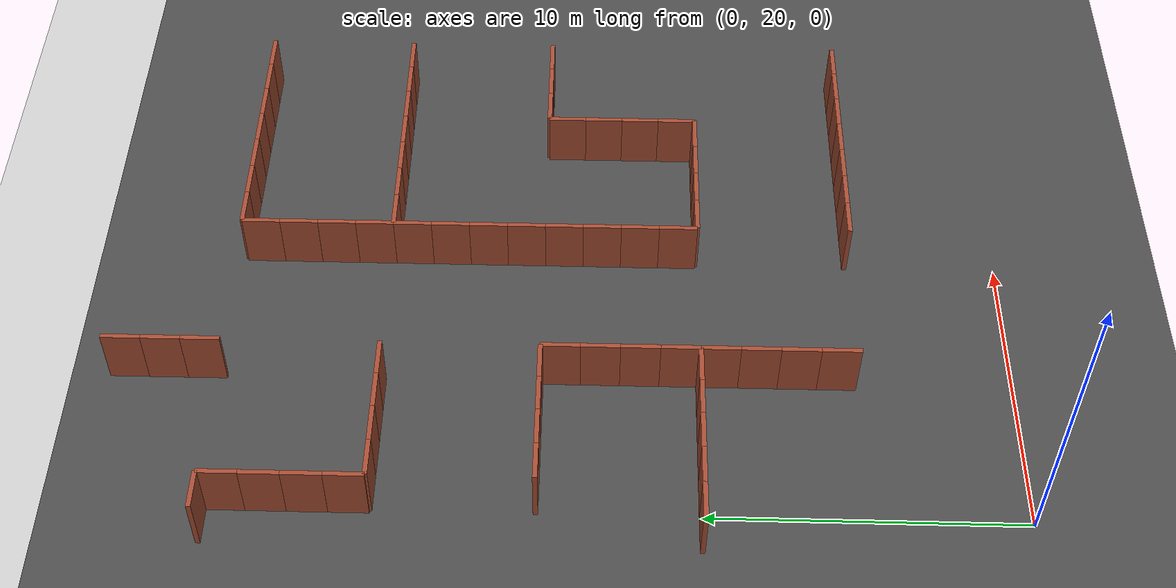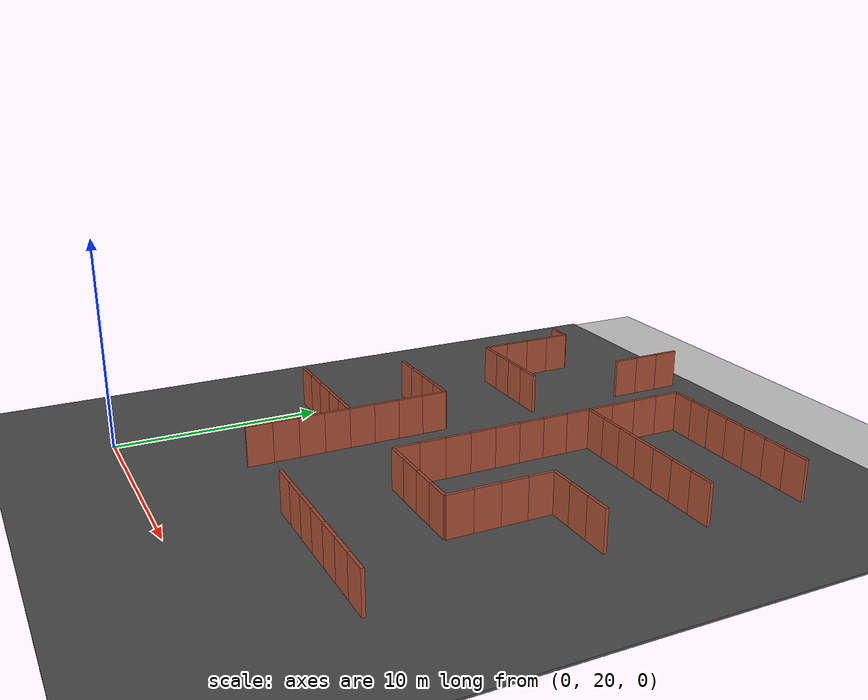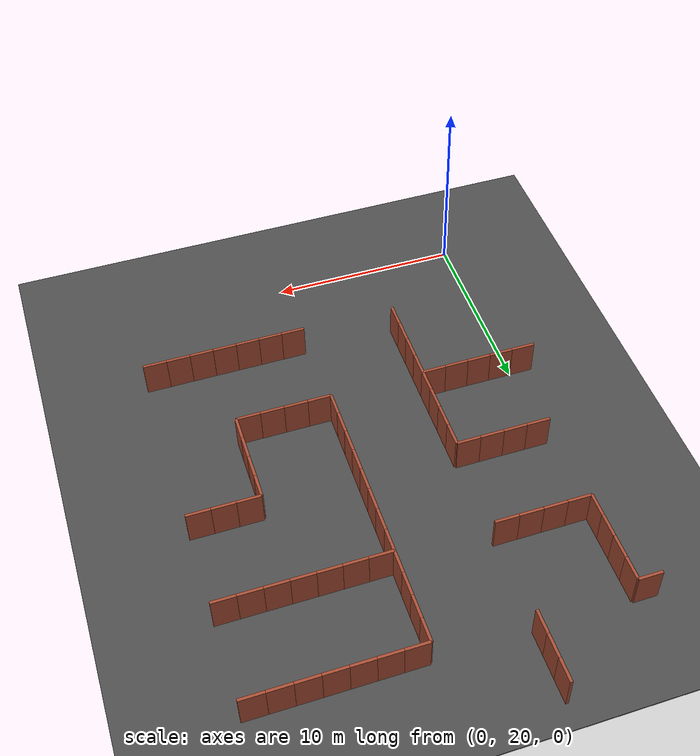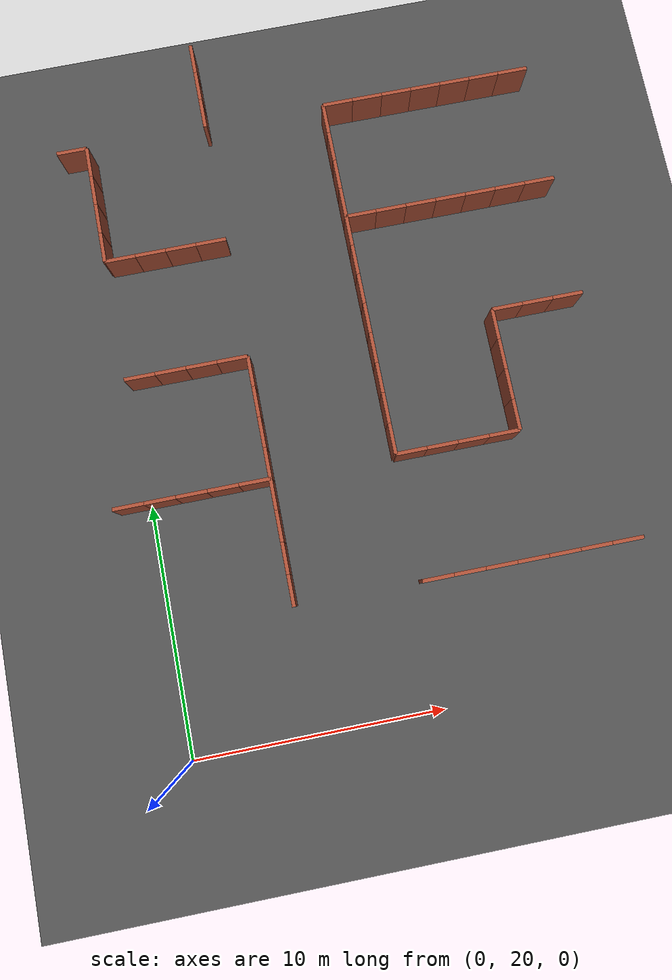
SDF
<sdf version="1.6">
 <world name="default">
  <model name="ground_plane">
   <static>1</static>
   <link name="link">
    <collision name="collision">
     <geometry><plane><normal>0 0 1</normal><size>100 100</size></plane></geometry>
     <surface><friction><ode><mu>100</mu><mu2>50</mu2></ode></friction></surface>
    </collision>
    <visual name="visual">
     <cast_shadows>0</cast_shadows>
     <geometry><plane><normal>0 0 1</normal><size>100 100</size></plane></geometry>
     <material>
      <script><uri>file://media/materials/scripts/gazebo.material</uri><name>Gazebo/Grey</name></script>
     </material>
    </visual>
   </link>
  </model>
  <model name="asphalt_plane">
   <static>1</static>
   <link name="link">
    <collision name="collision"><geometry><box><size>100 100 0.1</size></box></geometry></collision>
    <visual name="visual">
     <cast_shadows>0</cast_shadows>
     <geometry><box><size>100 100 0.1</size></box></geometry>
     <material>
      <script>
       <uri>model://asphalt_plane/materials/scripts</uri>
       <uri>model://asphalt_plane/materials/textures</uri>
       <name>vrc/asphalt</name>
      </script>
     </material>
    </visual>
   </link>
  </model>
  <model name="brick_wall_20_32_vertical1">
   <pose>0.625 30 0 0 -0 0</pose>
   <link name="Wall_0">
    <collision name="Wall_0_Collision">
     <geometry><box><size>1.25 0.15 2</size></box></geometry>
     <pose>0 0 1 0 -0 0</pose>
    </collision>
    <visual name="Wall_0_Visual">
     <pose>0 0 1 0 -0 0</pose>
     <geometry><box><size>1.25 0.15 2</size></box></geometry>
     <material>
      <script><uri>file://media/materials/scripts/gazebo.material</uri><name>Gazebo/Bricks</name></script>
      <ambient>1 1 1 1</ambient>
     </material>
     <meta><layer>0</layer></meta>
    </visual>
   </link>
   <static>1</static>
  </model>
  <model name="brick_wall_20_32_vertical2">
   <pose>-0.625 30 0 0 -0 0</pose>
   <link name="Wall_0">
    <collision name="Wall_0_Collision">
     <geometry><box><size>1.25 0.15 2</size></box></geometry>
     <pose>0 0 1 0 -0 0</pose>
    </collision>
    <visual name="Wall_0_Visual">
     <pose>0 0 1 0 -0 0</pose>
     <geometry><box><size>1.25 0.15 2</size></box></geometry>
     <material>
      <script><uri>file://media/materials/scripts/gazebo.material</uri><name>Gazebo/Bricks</name></script>
      <ambient>1 1 1 1</ambient>
     </material>
     <meta><layer>0</layer></meta>
    </visual>
   </link>
   <static>1</static>
  </model>
  <model name="brick_wall_20_34_vertical1">
   <pose>0.625 35 0 0 -0 0</pose>
   <link name="Wall_0">
    <collision name="Wall_0_Collision">
     <geometry><box><size>1.25 0.15 2</size></box></geometry>
     <pose>0 0 1 0 -0 0</pose>
    </collision>
    <visual name="Wall_0_Visual">
     <pose>0 0 1 0 -0 0</pose>
     <geometry><box><size>1.25 0.15 2</size></box></geometry>
     <material>
      <script><uri>file://media/materials/scripts/gazebo.material</uri><name>Gazebo/Bricks</name></script>
      <ambient>1 1 1 1</ambient>
     </material>
     <meta><layer>0</layer></meta>
    </visual>
   </link>
   <static>1</static>
  </model>
  <model name="brick_wall_20_36_vertical1">
   <pose>0.625 40 0 0 -0 0</pose>
   <link name="Wall_0">
    <collision name="Wall_0_Collision">
     <geometry><box><size>1.25 0.15 2</size></box></geometry>
     <pose>0 0 1 0 -0 0</pose>
    </collision>
    <visual name="Wall_0_Visual">
     <pose>0 0 1 0 -0 0</pose>
     <geometry><box><size>1.25 0.15 2</size></box></geometry>
     <material>
      <script><uri>file://media/materials/scripts/gazebo.material</uri><name>Gazebo/Bricks</name></script>
      <ambient>1 1 1 1</ambient>
     </material>
     <meta><layer>0</layer></meta>
    </visual>
   </link>
   <static>1</static>
  </model>
  <model name="brick_wall_20_36_horizontal1">
   <pose>0 40.625 0 0 -0 1.5708</pose>
   <link name="Wall_0">
    <collision name="Wall_0_Collision">
     <geometry><box><size>1.25 0.15 2</size></box></geometry>
     <pose>0 0 1 0 -0 0</pose>
    </collision>
    <visual name="Wall_0_Visual">
     <pose>0 0 1 0 -0 0</pose>
     <geometry><box><size>1.25 0.15 2</size></box></geometry>
     <material>
      <script><uri>file://media/materials/scripts/gazebo.material</uri><name>Gazebo/Bricks</name></script>
      <ambient>1 1 1 1</ambient>
     </material>
     <meta><layer>0</layer></meta>
    </visual>
   </link>
   <static>1</static>
  </model>
  <model name="brick_wall_20_37_horizontal1">
   <pose>0 43.125 0 0 -0 1.5708</pose>
   <link name="Wall_0">
    <collision name="Wall_0_Collision">
     <geometry><box><size>1.25 0.15 2</size></box></geometry>
     <pose>0 0 1 0 -0 0</pose>
    </collision>
    <visual name="Wall_0_Visual">
     <pose>0 0 1 0 -0 0</pose>
     <geometry><box><size>1.25 0.15 2</size></box></geometry>
     <material>
      <script><uri>file://media/materials/scripts/gazebo.material</uri><name>Gazebo/Bricks</name></script>
      <ambient>1 1 1 1</ambient>
     </material>
     <meta><layer>0</layer></meta>
    </visual>
   </link>
   <static>1</static>
  </model>
  <model name="brick_wall_20_37_horizontal2">
   <pose>0 41.875 0 0 -0 1.5708</pose>
   <link name="Wall_0">
    <collision name="Wall_0_Collision">
     <geometry><box><size>1.25 0.15 2</size></box></geometry>
     <pose>0 0 1 0 -0 0</pose>
    </collision>
    <visual name="Wall_0_Visual">
     <pose>0 0 1 0 -0 0</pose>
     <geometry><box><size>1.25 0.15 2</size></box></geometry>
     <material>
      <script><uri>file://media/materials/scripts/gazebo.material</uri><name>Gazebo/Bricks</name></script>
      <ambient>1 1 1 1</ambient>
     </material>
     <meta><layer>0</layer></meta>
    </visual>
   </link>
   <static>1</static>
  </model>
  <model name="brick_wall_20_38_vertical2">
   <pose>-0.625 45 0 0 -0 0</pose>
   <link name="Wall_0">
    <collision name="Wall_0_Collision">
     <geometry><box><size>1.25 0.15 2</size></box></geometry>
     <pose>0 0 1 0 -0 0</pose>
    </collision>
    <visual name="Wall_0_Visual">
     <pose>0 0 1 0 -0 0</pose>
     <geometry><box><size>1.25 0.15 2</size></box></geometry>
     <material>
      <script><uri>file://media/materials/scripts/gazebo.material</uri><name>Gazebo/Bricks</name></script>
      <ambient>1 1 1 1</ambient>
     </material>
     <meta><layer>0</layer></meta>
    </visual>
   </link>
   <static>1</static>
  </model>
  <model name="brick_wall_20_38_horizontal2">
   <pose>0 44.375 0 0 -0 1.5708</pose>
   <link name="Wall_0">
    <collision name="Wall_0_Collision">
     <geometry><box><size>1.25 0.15 2</size></box></geometry>
     <pose>0 0 1 0 -0 0</pose>
    </collision>
    <visual name="Wall_0_Visual">
     <pose>0 0 1 0 -0 0</pose>
     <geometry><box><size>1.25 0.15 2</size></box></geometry>
     <material>
      <script><uri>file://media/materials/scripts/gazebo.material</uri><name>Gazebo/Bricks</name></script>
      <ambient>1 1 1 1</ambient>
     </material>
     <meta><layer>0</layer></meta>
    </visual>
   </link>
   <static>1</static>
  </model>
  <model name="brick_wall_21_32_vertical1">
   <pose>3.125 30 0 0 -0 0</pose>
   <link name="Wall_0">
    <collision name="Wall_0_Collision">
     <geometry><box><size>1.25 0.15 2</size></box></geometry>
     <pose>0 0 1 0 -0 0</pose>
    </collision>
    <visual name="Wall_0_Visual">
     <pose>0 0 1 0 -0 0</pose>
     <geometry><box><size>1.25 0.15 2</size></box></geometry>
     <material>
      <script><uri>file://media/materials/scripts/gazebo.material</uri><name>Gazebo/Bricks</name></script>
      <ambient>1 1 1 1</ambient>
     </material>
     <meta><layer>0</layer></meta>
    </visual>
   </link>
   <static>1</static>
  </model>
  <model name="brick_wall_21_32_vertical2">
   <pose>1.875 30 0 0 -0 0</pose>
   <link name="Wall_0">
    <collision name="Wall_0_Collision">
     <geometry><box><size>1.25 0.15 2</size></box></geometry>
     <pose>0 0 1 0 -0 0</pose>
    </collision>
    <visual name="Wall_0_Visual">
     <pose>0 0 1 0 -0 0</pose>
     <geometry><box><size>1.25 0.15 2</size></box></geometry>
     <material>
      <script><uri>file://media/materials/scripts/gazebo.material</uri><name>Gazebo/Bricks</name></script>
      <ambient>1 1 1 1</ambient>
     </material>
     <meta><layer>0</layer></meta>
    </visual>
   </link>
   <static>1</static>
  </model>
  <model name="brick_wall_21_34_vertical1">
   <pose>3.125 35 0 0 -0 0</pose>
   <link name="Wall_0">
    <collision name="Wall_0_Collision">
     <geometry><box><size>1.25 0.15 2</size></box></geometry>
     <pose>0 0 1 0 -0 0</pose>
    </collision>
    <visual name="Wall_0_Visual">
     <pose>0 0 1 0 -0 0</pose>
     <geometry><box><size>1.25 0.15 2</size></box></geometry>
     <material>
      <script><uri>file://media/materials/scripts/gazebo.material</uri><name>Gazebo/Bricks</name></script>
      <ambient>1 1 1 1</ambient>
     </material>
     <meta><layer>0</layer></meta>
    </visual>
   </link>
   <static>1</static>
  </model>
  <model name="brick_wall_21_34_vertical2">
   <pose>1.875 35 0 0 -0 0</pose>
   <link name="Wall_0">
    <collision name="Wall_0_Collision">
     <geometry><box><size>1.25 0.15 2</size></box></geometry>
     <pose>0 0 1 0 -0 0</pose>
    </collision>
    <visual name="Wall_0_Visual">
     <pose>0 0 1 0 -0 0</pose>
     <geometry><box><size>1.25 0.15 2</size></box></geometry>
     <material>
      <script><uri>file://media/materials/scripts/gazebo.material</uri><name>Gazebo/Bricks</name></script>
      <ambient>1 1 1 1</ambient>
     </material>
     <meta><layer>0</layer></meta>
    </visual>
   </link>
   <static>1</static>
  </model>
  <model name="brick_wall_21_36_vertical1">
   <pose>3.125 40 0 0 -0 0</pose>
   <link name="Wall_0">
    <collision name="Wall_0_Collision">
     <geometry><box><size>1.25 0.15 2</size></box></geometry>
     <pose>0 0 1 0 -0 0</pose>
    </collision>
    <visual name="Wall_0_Visual">
     <pose>0 0 1 0 -0 0</pose>
     <geometry><box><size>1.25 0.15 2</size></box></geometry>
     <material>
      <script><uri>file://media/materials/scripts/gazebo.material</uri><name>Gazebo/Bricks</name></script>
      <ambient>1 1 1 1</ambient>
     </material>
     <meta><layer>0</layer></meta>
    </visual>
   </link>
   <static>1</static>
  </model>
  <model name="brick_wall_21_36_vertical2">
   <pose>1.875 40 0 0 -0 0</pose>
   <link name="Wall_0">
    <collision name="Wall_0_Collision">
     <geometry><box><size>1.25 0.15 2</size></box></geometry>
     <pose>0 0 1 0 -0 0</pose>
    </collision>
    <visual name="Wall_0_Visual">
     <pose>0 0 1 0 -0 0</pose>
     <geometry><box><size>1.25 0.15 2</size></box></geometry>
     <material>
      <script><uri>file://media/materials/scripts/gazebo.material</uri><name>Gazebo/Bricks</name></script>
      <ambient>1 1 1 1</ambient>
     </material>
     <meta><layer>0</layer></meta>
    </visual>
   </link>
   <static>1</static>
  </model>
  <model name="brick_wall_22_30_horizontal1">
   <pose>5 25.625 0 0 -0 1.5708</pose>
   <link name="Wall_0">
    <collision name="Wall_0_Collision">
     <geometry><box><size>1.25 0.15 2</size></box></geometry>
     <pose>0 0 1 0 -0 0</pose>
    </collision>
    <visual name="Wall_0_Visual">
     <pose>0 0 1 0 -0 0</pose>
     <geometry><box><size>1.25 0.15 2</size></box></geometry>
     <material>
      <script><uri>file://media/materials/scripts/gazebo.material</uri><name>Gazebo/Bricks</name></script>
      <ambient>1 1 1 1</ambient>
     </material>
     <meta><layer>0</layer></meta>
    </visual>
   </link>
   <static>1</static>
  </model>
  <model name="brick_wall_22_31_horizontal1">
   <pose>5 28.125 0 0 -0 1.5708</pose>
   <link name="Wall_0">
    <collision name="Wall_0_Collision">
     <geometry><box><size>1.25 0.15 2</size></box></geometry>
     <pose>0 0 1 0 -0 0</pose>
    </collision>
    <visual name="Wall_0_Visual">
     <pose>0 0 1 0 -0 0</pose>
     <geometry><box><size>1.25 0.15 2</size></box></geometry>
     <material>
      <script><uri>file://media/materials/scripts/gazebo.material</uri><name>Gazebo/Bricks</name></script>
      <ambient>1 1 1 1</ambient>
     </material>
     <meta><layer>0</layer></meta>
    </visual>
   </link>
   <static>1</static>
  </model>
  <model name="brick_wall_22_31_horizontal2">
   <pose>5 26.875 0 0 -0 1.5708</pose>
   <link name="Wall_0">
    <collision name="Wall_0_Collision">
     <geometry><box><size>1.25 0.15 2</size></box></geometry>
     <pose>0 0 1 0 -0 0</pose>
    </collision>
    <visual name="Wall_0_Visual">
     <pose>0 0 1 0 -0 0</pose>
     <geometry><box><size>1.25 0.15 2</size></box></geometry>
     <material>
      <script><uri>file://media/materials/scripts/gazebo.material</uri><name>Gazebo/Bricks</name></script>
      <ambient>1 1 1 1</ambient>
     </material>
     <meta><layer>0</layer></meta>
    </visual>
   </link>
   <static>1</static>
  </model>
  <model name="brick_wall_22_32_vertical2">
   <pose>4.375 30 0 0 -0 0</pose>
   <link name="Wall_0">
    <collision name="Wall_0_Collision">
     <geometry><box><size>1.25 0.15 2</size></box></geometry>
     <pose>0 0 1 0 -0 0</pose>
    </collision>
    <visual name="Wall_0_Visual">
     <pose>0 0 1 0 -0 0</pose>
     <geometry><box><size>1.25 0.15 2</size></box></geometry>
     <material>
      <script><uri>file://media/materials/scripts/gazebo.material</uri><name>Gazebo/Bricks</name></script>
      <ambient>1 1 1 1</ambient>
     </material>
     <meta><layer>0</layer></meta>
    </visual>
   </link>
   <static>1</static>
  </model>
  <model name="brick_wall_22_32_horizontal1">
   <pose>5 30.625 0 0 -0 1.5708</pose>
   <link name="Wall_0">
    <collision name="Wall_0_Collision">
     <geometry><box><size>1.25 0.15 2</size></box></geometry>
     <pose>0 0 1 0 -0 0</pose>
    </collision>
    <visual name="Wall_0_Visual">
     <pose>0 0 1 0 -0 0</pose>
     <geometry><box><size>1.25 0.15 2</size></box></geometry>
     <material>
      <script><uri>file://media/materials/scripts/gazebo.material</uri><name>Gazebo/Bricks</name></script>
      <ambient>1 1 1 1</ambient>
     </material>
     <meta><layer>0</layer></meta>
    </visual>
   </link>
   <static>1</static>
  </model>
  <model name="brick_wall_22_32_horizontal2">
   <pose>5 29.375 0 0 -0 1.5708</pose>
   <link name="Wall_0">
    <collision name="Wall_0_Collision">
     <geometry><box><size>1.25 0.15 2</size></box></geometry>
     <pose>0 0 1 0 -0 0</pose>
    </collision>
    <visual name="Wall_0_Visual">
     <pose>0 0 1 0 -0 0</pose>
     <geometry><box><size>1.25 0.15 2</size></box></geometry>
     <material>
      <script><uri>file://media/materials/scripts/gazebo.material</uri><name>Gazebo/Bricks</name></script>
      <ambient>1 1 1 1</ambient>
     </material>
     <meta><layer>0</layer></meta>
    </visual>
   </link>
   <static>1</static>
  </model>
  <model name="brick_wall_22_33_horizontal1">
   <pose>5 33.125 0 0 -0 1.5708</pose>
   <link name="Wall_0">
    <collision name="Wall_0_Collision">
     <geometry><box><size>1.25 0.15 2</size></box></geometry>
     <pose>0 0 1 0 -0 0</pose>
    </collision>
    <visual name="Wall_0_Visual">
     <pose>0 0 1 0 -0 0</pose>
     <geometry><box><size>1.25 0.15 2</size></box></geometry>
     <material>
      <script><uri>file://media/materials/scripts/gazebo.material</uri><name>Gazebo/Bricks</name></script>
      <ambient>1 1 1 1</ambient>
     </material>
     <meta><layer>0</layer></meta>
    </visual>
   </link>
   <static>1</static>
  </model>
  <model name="brick_wall_22_33_horizontal2">
   <pose>5 31.875 0 0 -0 1.5708</pose>
   <link name="Wall_0">
    <collision name="Wall_0_Collision">
     <geometry><box><size>1.25 0.15 2</size></box></geometry>
     <pose>0 0 1 0 -0 0</pose>
    </collision>
    <visual name="Wall_0_Visual">
     <pose>0 0 1 0 -0 0</pose>
     <geometry><box><size>1.25 0.15 2</size></box></geometry>
     <material>
      <script><uri>file://media/materials/scripts/gazebo.material</uri><name>Gazebo/Bricks</name></script>
      <ambient>1 1 1 1</ambient>
     </material>
     <meta><layer>0</layer></meta>
    </visual>
   </link>
   <static>1</static>
  </model>
  <model name="brick_wall_22_34_vertical2">
   <pose>4.375 35 0 0 -0 0</pose>
   <link name="Wall_0">
    <collision name="Wall_0_Collision">
     <geometry><box><size>1.25 0.15 2</size></box></geometry>
     <pose>0 0 1 0 -0 0</pose>
    </collision>
    <visual name="Wall_0_Visual">
     <pose>0 0 1 0 -0 0</pose>
     <geometry><box><size>1.25 0.15 2</size></box></geometry>
     <material>
      <script><uri>file://media/materials/scripts/gazebo.material</uri><name>Gazebo/Bricks</name></script>
      <ambient>1 1 1 1</ambient>
     </material>
     <meta><layer>0</layer></meta>
    </visual>
   </link>
   <static>1</static>
  </model>
  <model name="brick_wall_22_34_horizontal2">
   <pose>5 34.375 0 0 -0 1.5708</pose>
   <link name="Wall_0">
    <collision name="Wall_0_Collision">
     <geometry><box><size>1.25 0.15 2</size></box></geometry>
     <pose>0 0 1 0 -0 0</pose>
    </collision>
    <visual name="Wall_0_Visual">
     <pose>0 0 1 0 -0 0</pose>
     <geometry><box><size>1.25 0.15 2</size></box></geometry>
     <material>
      <script><uri>file://media/materials/scripts/gazebo.material</uri><name>Gazebo/Bricks</name></script>
      <ambient>1 1 1 1</ambient>
     </material>
     <meta><layer>0</layer></meta>
    </visual>
   </link>
   <static>1</static>
  </model>
  <model name="brick_wall_22_36_vertical2">
   <pose>4.375 40 0 0 -0 0</pose>
   <link name="Wall_0">
    <collision name="Wall_0_Collision">
     <geometry><box><size>1.25 0.15 2</size></box></geometry>
     <pose>0 0 1 0 -0 0</pose>
    </collision>
    <visual name="Wall_0_Visual">
     <pose>0 0 1 0 -0 0</pose>
     <geometry><box><size>1.25 0.15 2</size></box></geometry>
     <material>
      <script><uri>file://media/materials/scripts/gazebo.material</uri><name>Gazebo/Bricks</name></script>
      <ambient>1 1 1 1</ambient>
     </material>
     <meta><layer>0</layer></meta>
    </visual>
   </link>
   <static>1</static>
  </model>
  <model name="brick_wall_22_38_horizontal1">
   <pose>5 45.625 0 0 -0 1.5708</pose>
   <link name="Wall_0">
    <collision name="Wall_0_Collision">
     <geometry><box><size>1.25 0.15 2</size></box></geometry>
     <pose>0 0 1 0 -0 0</pose>
    </collision>
    <visual name="Wall_0_Visual">
     <pose>0 0 1 0 -0 0</pose>
     <geometry><box><size>1.25 0.15 2</size></box></geometry>
     <material>
      <script><uri>file://media/materials/scripts/gazebo.material</uri><name>Gazebo/Bricks</name></script>
      <ambient>1 1 1 1</ambient>
     </material>
     <meta><layer>0</layer></meta>
    </visual>
   </link>
   <static>1</static>
  </model>
  <model name="brick_wall_22_39_horizontal1">
   <pose>5 48.125 0 0 -0 1.5708</pose>
   <link name="Wall_0">
    <collision name="Wall_0_Collision">
     <geometry><box><size>1.25 0.15 2</size></box></geometry>
     <pose>0 0 1 0 -0 0</pose>
    </collision>
    <visual name="Wall_0_Visual">
     <pose>0 0 1 0 -0 0</pose>
     <geometry><box><size>1.25 0.15 2</size></box></geometry>
     <material>
      <script><uri>file://media/materials/scripts/gazebo.material</uri><name>Gazebo/Bricks</name></script>
      <ambient>1 1 1 1</ambient>
     </material>
     <meta><layer>0</layer></meta>
    </visual>
   </link>
   <static>1</static>
  </model>
  <model name="brick_wall_22_39_horizontal2">
   <pose>5 46.875 0 0 -0 1.5708</pose>
   <link name="Wall_0">
    <collision name="Wall_0_Collision">
     <geometry><box><size>1.25 0.15 2</size></box></geometry>
     <pose>0 0 1 0 -0 0</pose>
    </collision>
    <visual name="Wall_0_Visual">
     <pose>0 0 1 0 -0 0</pose>
     <geometry><box><size>1.25 0.15 2</size></box></geometry>
     <material>
      <script><uri>file://media/materials/scripts/gazebo.material</uri><name>Gazebo/Bricks</name></script>
      <ambient>1 1 1 1</ambient>
     </material>
     <meta><layer>0</layer></meta>
    </visual>
   </link>
   <static>1</static>
  </model>
  <model name="brick_wall_24_30_vertical1">
   <pose>10.625 25 0 0 -0 0</pose>
   <link name="Wall_0">
    <collision name="Wall_0_Collision">
     <geometry><box><size>1.25 0.15 2</size></box></geometry>
     <pose>0 0 1 0 -0 0</pose>
    </collision>
    <visual name="Wall_0_Visual">
     <pose>0 0 1 0 -0 0</pose>
     <geometry><box><size>1.25 0.15 2</size></box></geometry>
     <material>
      <script><uri>file://media/materials/scripts/gazebo.material</uri><name>Gazebo/Bricks</name></script>
      <ambient>1 1 1 1</ambient>
     </material>
     <meta><layer>0</layer></meta>
    </visual>
   </link>
   <static>1</static>
  </model>
  <model name="brick_wall_24_32_vertical1">
   <pose>10.625 30 0 0 -0 0</pose>
   <link name="Wall_0">
    <collision name="Wall_0_Collision">
     <geometry><box><size>1.25 0.15 2</size></box></geometry>
     <pose>0 0 1 0 -0 0</pose>
    </collision>
    <visual name="Wall_0_Visual">
     <pose>0 0 1 0 -0 0</pose>
     <geometry><box><size>1.25 0.15 2</size></box></geometry>
     <material>
      <script><uri>file://media/materials/scripts/gazebo.material</uri><name>Gazebo/Bricks</name></script>
      <ambient>1 1 1 1</ambient>
     </material>
     <meta><layer>0</layer></meta>
    </visual>
   </link>
   <static>1</static>
  </model>
  <model name="brick_wall_24_32_horizontal1">
   <pose>10 30.625 0 0 -0 1.5708</pose>
   <link name="Wall_0">
    <collision name="Wall_0_Collision">
     <geometry><box><size>1.25 0.15 2</size></box></geometry>
     <pose>0 0 1 0 -0 0</pose>
    </collision>
    <visual name="Wall_0_Visual">
     <pose>0 0 1 0 -0 0</pose>
     <geometry><box><size>1.25 0.15 2</size></box></geometry>
     <material>
      <script><uri>file://media/materials/scripts/gazebo.material</uri><name>Gazebo/Bricks</name></script>
      <ambient>1 1 1 1</ambient>
     </material>
     <meta><layer>0</layer></meta>
    </visual>
   </link>
   <static>1</static>
  </model>
  <model name="brick_wall_24_33_horizontal1">
   <pose>10 33.125 0 0 -0 1.5708</pose>
   <link name="Wall_0">
    <collision name="Wall_0_Collision">
     <geometry><box><size>1.25 0.15 2</size></box></geometry>
     <pose>0 0 1 0 -0 0</pose>
    </collision>
    <visual name="Wall_0_Visual">
     <pose>0 0 1 0 -0 0</pose>
     <geometry><box><size>1.25 0.15 2</size></box></geometry>
     <material>
      <script><uri>file://media/materials/scripts/gazebo.material</uri><name>Gazebo/Bricks</name></script>
      <ambient>1 1 1 1</ambient>
     </material>
     <meta><layer>0</layer></meta>
    </visual>
   </link>
   <static>1</static>
  </model>
  <model name="brick_wall_24_33_horizontal2">
   <pose>10 31.875 0 0 -0 1.5708</pose>
   <link name="Wall_0">
    <collision name="Wall_0_Collision">
     <geometry><box><size>1.25 0.15 2</size></box></geometry>
     <pose>0 0 1 0 -0 0</pose>
    </collision>
    <visual name="Wall_0_Visual">
     <pose>0 0 1 0 -0 0</pose>
     <geometry><box><size>1.25 0.15 2</size></box></geometry>
     <material>
      <script><uri>file://media/materials/scripts/gazebo.material</uri><name>Gazebo/Bricks</name></script>
      <ambient>1 1 1 1</ambient>
     </material>
     <meta><layer>0</layer></meta>
    </visual>
   </link>
   <static>1</static>
  </model>
  <model name="brick_wall_24_34_horizontal1">
   <pose>10 35.625 0 0 -0 1.5708</pose>
   <link name="Wall_0">
    <collision name="Wall_0_Collision">
     <geometry><box><size>1.25 0.15 2</size></box></geometry>
     <pose>0 0 1 0 -0 0</pose>
    </collision>
    <visual name="Wall_0_Visual">
     <pose>0 0 1 0 -0 0</pose>
     <geometry><box><size>1.25 0.15 2</size></box></geometry>
     <material>
      <script><uri>file://media/materials/scripts/gazebo.material</uri><name>Gazebo/Bricks</name></script>
      <ambient>1 1 1 1</ambient>
     </material>
     <meta><layer>0</layer></meta>
    </visual>
   </link>
   <static>1</static>
  </model>
  <model name="brick_wall_24_34_horizontal2">
   <pose>10 34.375 0 0 -0 1.5708</pose>
   <link name="Wall_0">
    <collision name="Wall_0_Collision">
     <geometry><box><size>1.25 0.15 2</size></box></geometry>
     <pose>0 0 1 0 -0 0</pose>
    </collision>
    <visual name="Wall_0_Visual">
     <pose>0 0 1 0 -0 0</pose>
     <geometry><box><size>1.25 0.15 2</size></box></geometry>
     <material>
      <script><uri>file://media/materials/scripts/gazebo.material</uri><name>Gazebo/Bricks</name></script>
      <ambient>1 1 1 1</ambient>
     </material>
     <meta><layer>0</layer></meta>
    </visual>
   </link>
   <static>1</static>
  </model>
  <model name="brick_wall_24_35_horizontal1">
   <pose>10 38.125 0 0 -0 1.5708</pose>
   <link name="Wall_0">
    <collision name="Wall_0_Collision">
     <geometry><box><size>1.25 0.15 2</size></box></geometry>
     <pose>0 0 1 0 -0 0</pose>
    </collision>
    <visual name="Wall_0_Visual">
     <pose>0 0 1 0 -0 0</pose>
     <geometry><box><size>1.25 0.15 2</size></box></geometry>
     <material>
      <script><uri>file://media/materials/scripts/gazebo.material</uri><name>Gazebo/Bricks</name></script>
      <ambient>1 1 1 1</ambient>
     </material>
     <meta><layer>0</layer></meta>
    </visual>
   </link>
   <static>1</static>
  </model>
  <model name="brick_wall_24_35_horizontal2">
   <pose>10 36.875 0 0 -0 1.5708</pose>
   <link name="Wall_0">
    <collision name="Wall_0_Collision">
     <geometry><box><size>1.25 0.15 2</size></box></geometry>
     <pose>0 0 1 0 -0 0</pose>
    </collision>
    <visual name="Wall_0_Visual">
     <pose>0 0 1 0 -0 0</pose>
     <geometry><box><size>1.25 0.15 2</size></box></geometry>
     <material>
      <script><uri>file://media/materials/scripts/gazebo.material</uri><name>Gazebo/Bricks</name></script>
      <ambient>1 1 1 1</ambient>
     </material>
     <meta><layer>0</layer></meta>
    </visual>
   </link>
   <static>1</static>
  </model>
  <model name="brick_wall_24_36_vertical1">
   <pose>10.625 40 0 0 -0 0</pose>
   <link name="Wall_0">
    <collision name="Wall_0_Collision">
     <geometry><box><size>1.25 0.15 2</size></box></geometry>
     <pose>0 0 1 0 -0 0</pose>
    </collision>
    <visual name="Wall_0_Visual">
     <pose>0 0 1 0 -0 0</pose>
     <geometry><box><size>1.25 0.15 2</size></box></geometry>
     <material>
      <script><uri>file://media/materials/scripts/gazebo.material</uri><name>Gazebo/Bricks</name></script>
      <ambient>1 1 1 1</ambient>
     </material>
     <meta><layer>0</layer></meta>
    </visual>
   </link>
   <static>1</static>
  </model>
  <model name="brick_wall_24_36_horizontal1">
   <pose>10 40.625 0 0 -0 1.5708</pose>
   <link name="Wall_0">
    <collision name="Wall_0_Collision">
     <geometry><box><size>1.25 0.15 2</size></box></geometry>
     <pose>0 0 1 0 -0 0</pose>
    </collision>
    <visual name="Wall_0_Visual">
     <pose>0 0 1 0 -0 0</pose>
     <geometry><box><size>1.25 0.15 2</size></box></geometry>
     <material>
      <script><uri>file://media/materials/scripts/gazebo.material</uri><name>Gazebo/Bricks</name></script>
      <ambient>1 1 1 1</ambient>
     </material>
     <meta><layer>0</layer></meta>
    </visual>
   </link>
   <static>1</static>
  </model>
  <model name="brick_wall_24_36_horizontal2">
   <pose>10 39.375 0 0 -0 1.5708</pose>
   <link name="Wall_0">
    <collision name="Wall_0_Collision">
     <geometry><box><size>1.25 0.15 2</size></box></geometry>
     <pose>0 0 1 0 -0 0</pose>
    </collision>
    <visual name="Wall_0_Visual">
     <pose>0 0 1 0 -0 0</pose>
     <geometry><box><size>1.25 0.15 2</size></box></geometry>
     <material>
      <script><uri>file://media/materials/scripts/gazebo.material</uri><name>Gazebo/Bricks</name></script>
      <ambient>1 1 1 1</ambient>
     </material>
     <meta><layer>0</layer></meta>
    </visual>
   </link>
   <static>1</static>
  </model>
  <model name="brick_wall_24_37_horizontal1">
   <pose>10 43.125 0 0 -0 1.5708</pose>
   <link name="Wall_0">
    <collision name="Wall_0_Collision">
     <geometry><box><size>1.25 0.15 2</size></box></geometry>
     <pose>0 0 1 0 -0 0</pose>
    </collision>
    <visual name="Wall_0_Visual">
     <pose>0 0 1 0 -0 0</pose>
     <geometry><box><size>1.25 0.15 2</size></box></geometry>
     <material>
      <script><uri>file://media/materials/scripts/gazebo.material</uri><name>Gazebo/Bricks</name></script>
      <ambient>1 1 1 1</ambient>
     </material>
     <meta><layer>0</layer></meta>
    </visual>
   </link>
   <static>1</static>
  </model>
  <model name="brick_wall_24_37_horizontal2">
   <pose>10 41.875 0 0 -0 1.5708</pose>
   <link name="Wall_0">
    <collision name="Wall_0_Collision">
     <geometry><box><size>1.25 0.15 2</size></box></geometry>
     <pose>0 0 1 0 -0 0</pose>
    </collision>
    <visual name="Wall_0_Visual">
     <pose>0 0 1 0 -0 0</pose>
     <geometry><box><size>1.25 0.15 2</size></box></geometry>
     <material>
      <script><uri>file://media/materials/scripts/gazebo.material</uri><name>Gazebo/Bricks</name></script>
      <ambient>1 1 1 1</ambient>
     </material>
     <meta><layer>0</layer></meta>
    </visual>
   </link>
   <static>1</static>
  </model>
  <model name="brick_wall_24_38_vertical1">
   <pose>10.625 45 0 0 -0 0</pose>
   <link name="Wall_0">
    <collision name="Wall_0_Collision">
     <geometry><box><size>1.25 0.15 2</size></box></geometry>
     <pose>0 0 1 0 -0 0</pose>
    </collision>
    <visual name="Wall_0_Visual">
     <pose>0 0 1 0 -0 0</pose>
     <geometry><box><size>1.25 0.15 2</size></box></geometry>
     <material>
      <script><uri>file://media/materials/scripts/gazebo.material</uri><name>Gazebo/Bricks</name></script>
      <ambient>1 1 1 1</ambient>
     </material>
     <meta><layer>0</layer></meta>
    </visual>
   </link>
   <static>1</static>
  </model>
  <model name="brick_wall_24_38_horizontal2">
   <pose>10 44.375 0 0 -0 1.5708</pose>
   <link name="Wall_0">
    <collision name="Wall_0_Collision">
     <geometry><box><size>1.25 0.15 2</size></box></geometry>
     <pose>0 0 1 0 -0 0</pose>
    </collision>
    <visual name="Wall_0_Visual">
     <pose>0 0 1 0 -0 0</pose>
     <geometry><box><size>1.25 0.15 2</size></box></geometry>
     <material>
      <script><uri>file://media/materials/scripts/gazebo.material</uri><name>Gazebo/Bricks</name></script>
      <ambient>1 1 1 1</ambient>
     </material>
     <meta><layer>0</layer></meta>
    </visual>
   </link>
   <static>1</static>
  </model>
  <model name="brick_wall_25_30_vertical1">
   <pose>13.125 25 0 0 -0 0</pose>
   <link name="Wall_0">
    <collision name="Wall_0_Collision">
     <geometry><box><size>1.25 0.15 2</size></box></geometry>
     <pose>0 0 1 0 -0 0</pose>
    </collision>
    <visual name="Wall_0_Visual">
     <pose>0 0 1 0 -0 0</pose>
     <geometry><box><size>1.25 0.15 2</size></box></geometry>
     <material>
      <script><uri>file://media/materials/scripts/gazebo.material</uri><name>Gazebo/Bricks</name></script>
      <ambient>1 1 1 1</ambient>
     </material>
     <meta><layer>0</layer></meta>
    </visual>
   </link>
   <static>1</static>
  </model>
  <model name="brick_wall_25_30_vertical2">
   <pose>11.875 25 0 0 -0 0</pose>
   <link name="Wall_0">
    <collision name="Wall_0_Collision">
     <geometry><box><size>1.25 0.15 2</size></box></geometry>
     <pose>0 0 1 0 -0 0</pose>
    </collision>
    <visual name="Wall_0_Visual">
     <pose>0 0 1 0 -0 0</pose>
     <geometry><box><size>1.25 0.15 2</size></box></geometry>
     <material>
      <script><uri>file://media/materials/scripts/gazebo.material</uri><name>Gazebo/Bricks</name></script>
      <ambient>1 1 1 1</ambient>
     </material>
     <meta><layer>0</layer></meta>
    </visual>
   </link>
   <static>1</static>
  </model>
  <model name="brick_wall_25_32_vertical1">
   <pose>13.125 30 0 0 -0 0</pose>
   <link name="Wall_0">
    <collision name="Wall_0_Collision">
     <geometry><box><size>1.25 0.15 2</size></box></geometry>
     <pose>0 0 1 0 -0 0</pose>
    </collision>
    <visual name="Wall_0_Visual">
     <pose>0 0 1 0 -0 0</pose>
     <geometry><box><size>1.25 0.15 2</size></box></geometry>
     <material>
      <script><uri>file://media/materials/scripts/gazebo.material</uri><name>Gazebo/Bricks</name></script>
      <ambient>1 1 1 1</ambient>
     </material>
     <meta><layer>0</layer></meta>
    </visual>
   </link>
   <static>1</static>
  </model>
  <model name="brick_wall_25_32_vertical2">
   <pose>11.875 30 0 0 -0 0</pose>
   <link name="Wall_0">
    <collision name="Wall_0_Collision">
     <geometry><box><size>1.25 0.15 2</size></box></geometry>
     <pose>0 0 1 0 -0 0</pose>
    </collision>
    <visual name="Wall_0_Visual">
     <pose>0 0 1 0 -0 0</pose>
     <geometry><box><size>1.25 0.15 2</size></box></geometry>
     <material>
      <script><uri>file://media/materials/scripts/gazebo.material</uri><name>Gazebo/Bricks</name></script>
      <ambient>1 1 1 1</ambient>
     </material>
     <meta><layer>0</layer></meta>
    </visual>
   </link>
   <static>1</static>
  </model>
  <model name="brick_wall_25_36_vertical1">
   <pose>13.125 40 0 0 -0 0</pose>
   <link name="Wall_0">
    <collision name="Wall_0_Collision">
     <geometry><box><size>1.25 0.15 2</size></box></geometry>
     <pose>0 0 1 0 -0 0</pose>
    </collision>
    <visual name="Wall_0_Visual">
     <pose>0 0 1 0 -0 0</pose>
     <geometry><box><size>1.25 0.15 2</size></box></geometry>
     <material>
      <script><uri>file://media/materials/scripts/gazebo.material</uri><name>Gazebo/Bricks</name></script>
      <ambient>1 1 1 1</ambient>
     </material>
     <meta><layer>0</layer></meta>
    </visual>
   </link>
   <static>1</static>
  </model>
  <model name="brick_wall_25_36_vertical2">
   <pose>11.875 40 0 0 -0 0</pose>
   <link name="Wall_0">
    <collision name="Wall_0_Collision">
     <geometry><box><size>1.25 0.15 2</size></box></geometry>
     <pose>0 0 1 0 -0 0</pose>
    </collision>
    <visual name="Wall_0_Visual">
     <pose>0 0 1 0 -0 0</pose>
     <geometry><box><size>1.25 0.15 2</size></box></geometry>
     <material>
      <script><uri>file://media/materials/scripts/gazebo.material</uri><name>Gazebo/Bricks</name></script>
      <ambient>1 1 1 1</ambient>
     </material>
     <meta><layer>0</layer></meta>
    </visual>
   </link>
   <static>1</static>
  </model>
  <model name="brick_wall_25_38_vertical1">
   <pose>13.125 45 0 0 -0 0</pose>
   <link name="Wall_0">
    <collision name="Wall_0_Collision">
     <geometry><box><size>1.25 0.15 2</size></box></geometry>
     <pose>0 0 1 0 -0 0</pose>
    </collision>
    <visual name="Wall_0_Visual">
     <pose>0 0 1 0 -0 0</pose>
     <geometry><box><size>1.25 0.15 2</size></box></geometry>
     <material>
      <script><uri>file://media/materials/scripts/gazebo.material</uri><name>Gazebo/Bricks</name></script>
      <ambient>1 1 1 1</ambient>
     </material>
     <meta><layer>0</layer></meta>
    </visual>
   </link>
   <static>1</static>
  </model>
  <model name="brick_wall_25_38_vertical2">
   <pose>11.875 45 0 0 -0 0</pose>
   <link name="Wall_0">
    <collision name="Wall_0_Collision">
     <geometry><box><size>1.25 0.15 2</size></box></geometry>
     <pose>0 0 1 0 -0 0</pose>
    </collision>
    <visual name="Wall_0_Visual">
     <pose>0 0 1 0 -0 0</pose>
     <geometry><box><size>1.25 0.15 2</size></box></geometry>
     <material>
      <script><uri>file://media/materials/scripts/gazebo.material</uri><name>Gazebo/Bricks</name></script>
      <ambient>1 1 1 1</ambient>
     </material>
     <meta><layer>0</layer></meta>
    </visual>
   </link>
   <static>1</static>
  </model>
  <model name="brick_wall_26_30_vertical1">
   <pose>15.625 25 0 0 -0 0</pose>
   <link name="Wall_0">
    <collision name="Wall_0_Collision">
     <geometry><box><size>1.25 0.15 2</size></box></geometry>
     <pose>0 0 1 0 -0 0</pose>
    </collision>
    <visual name="Wall_0_Visual">
     <pose>0 0 1 0 -0 0</pose>
     <geometry><box><size>1.25 0.15 2</size></box></geometry>
     <material>
      <script><uri>file://media/materials/scripts/gazebo.material</uri><name>Gazebo/Bricks</name></script>
      <ambient>1 1 1 1</ambient>
     </material>
     <meta><layer>0</layer></meta>
    </visual>
   </link>
   <static>1</static>
  </model>
  <model name="brick_wall_26_30_vertical2">
   <pose>14.375 25 0 0 -0 0</pose>
   <link name="Wall_0">
    <collision name="Wall_0_Collision">
     <geometry><box><size>1.25 0.15 2</size></box></geometry>
     <pose>0 0 1 0 -0 0</pose>
    </collision>
    <visual name="Wall_0_Visual">
     <pose>0 0 1 0 -0 0</pose>
     <geometry><box><size>1.25 0.15 2</size></box></geometry>
     <material>
      <script><uri>file://media/materials/scripts/gazebo.material</uri><name>Gazebo/Bricks</name></script>
      <ambient>1 1 1 1</ambient>
     </material>
     <meta><layer>0</layer></meta>
    </visual>
   </link>
   <static>1</static>
  </model>
  <model name="brick_wall_26_32_vertical2">
   <pose>14.375 30 0 0 -0 0</pose>
   <link name="Wall_0">
    <collision name="Wall_0_Collision">
     <geometry><box><size>1.25 0.15 2</size></box></geometry>
     <pose>0 0 1 0 -0 0</pose>
    </collision>
    <visual name="Wall_0_Visual">
     <pose>0 0 1 0 -0 0</pose>
     <geometry><box><size>1.25 0.15 2</size></box></geometry>
     <material>
      <script><uri>file://media/materials/scripts/gazebo.material</uri><name>Gazebo/Bricks</name></script>
      <ambient>1 1 1 1</ambient>
     </material>
     <meta><layer>0</layer></meta>
    </visual>
   </link>
   <static>1</static>
  </model>
  <model name="brick_wall_26_32_horizontal1">
   <pose>15 30.625 0 0 -0 1.5708</pose>
   <link name="Wall_0">
    <collision name="Wall_0_Collision">
     <geometry><box><size>1.25 0.15 2</size></box></geometry>
     <pose>0 0 1 0 -0 0</pose>
    </collision>
    <visual name="Wall_0_Visual">
     <pose>0 0 1 0 -0 0</pose>
     <geometry><box><size>1.25 0.15 2</size></box></geometry>
     <material>
      <script><uri>file://media/materials/scripts/gazebo.material</uri><name>Gazebo/Bricks</name></script>
      <ambient>1 1 1 1</ambient>
     </material>
     <meta><layer>0</layer></meta>
    </visual>
   </link>
   <static>1</static>
  </model>
  <model name="brick_wall_26_33_horizontal1">
   <pose>15 33.125 0 0 -0 1.5708</pose>
   <link name="Wall_0">
    <collision name="Wall_0_Collision">
     <geometry><box><size>1.25 0.15 2</size></box></geometry>
     <pose>0 0 1 0 -0 0</pose>
    </collision>
    <visual name="Wall_0_Visual">
     <pose>0 0 1 0 -0 0</pose>
     <geometry><box><size>1.25 0.15 2</size></box></geometry>
     <material>
      <script><uri>file://media/materials/scripts/gazebo.material</uri><name>Gazebo/Bricks</name></script>
      <ambient>1 1 1 1</ambient>
     </material>
     <meta><layer>0</layer></meta>
    </visual>
   </link>
   <static>1</static>
  </model>
  <model name="brick_wall_26_33_horizontal2">
   <pose>15 31.875 0 0 -0 1.5708</pose>
   <link name="Wall_0">
    <collision name="Wall_0_Collision">
     <geometry><box><size>1.25 0.15 2</size></box></geometry>
     <pose>0 0 1 0 -0 0</pose>
    </collision>
    <visual name="Wall_0_Visual">
     <pose>0 0 1 0 -0 0</pose>
     <geometry><box><size>1.25 0.15 2</size></box></geometry>
     <material>
      <script><uri>file://media/materials/scripts/gazebo.material</uri><name>Gazebo/Bricks</name></script>
      <ambient>1 1 1 1</ambient>
     </material>
     <meta><layer>0</layer></meta>
    </visual>
   </link>
   <static>1</static>
  </model>
  <model name="brick_wall_26_34_vertical1">
   <pose>15.625 35 0 0 -0 0</pose>
   <link name="Wall_0">
    <collision name="Wall_0_Collision">
     <geometry><box><size>1.25 0.15 2</size></box></geometry>
     <pose>0 0 1 0 -0 0</pose>
    </collision>
    <visual name="Wall_0_Visual">
     <pose>0 0 1 0 -0 0</pose>
     <geometry><box><size>1.25 0.15 2</size></box></geometry>
     <material>
      <script><uri>file://media/materials/scripts/gazebo.material</uri><name>Gazebo/Bricks</name></script>
      <ambient>1 1 1 1</ambient>
     </material>
     <meta><layer>0</layer></meta>
    </visual>
   </link>
   <static>1</static>
  </model>
  <model name="brick_wall_26_34_horizontal2">
   <pose>15 34.375 0 0 -0 1.5708</pose>
   <link name="Wall_0">
    <collision name="Wall_0_Collision">
     <geometry><box><size>1.25 0.15 2</size></box></geometry>
     <pose>0 0 1 0 -0 0</pose>
    </collision>
    <visual name="Wall_0_Visual">
     <pose>0 0 1 0 -0 0</pose>
     <geometry><box><size>1.25 0.15 2</size></box></geometry>
     <material>
      <script><uri>file://media/materials/scripts/gazebo.material</uri><name>Gazebo/Bricks</name></script>
      <ambient>1 1 1 1</ambient>
     </material>
     <meta><layer>0</layer></meta>
    </visual>
   </link>
   <static>1</static>
  </model>
  <model name="brick_wall_26_36_vertical1">
   <pose>15.625 40 0 0 -0 0</pose>
   <link name="Wall_0">
    <collision name="Wall_0_Collision">
     <geometry><box><size>1.25 0.15 2</size></box></geometry>
     <pose>0 0 1 0 -0 0</pose>
    </collision>
    <visual name="Wall_0_Visual">
     <pose>0 0 1 0 -0 0</pose>
     <geometry><box><size>1.25 0.15 2</size></box></geometry>
     <material>
      <script><uri>file://media/materials/scripts/gazebo.material</uri><name>Gazebo/Bricks</name></script>
      <ambient>1 1 1 1</ambient>
     </material>
     <meta><layer>0</layer></meta>
    </visual>
   </link>
   <static>1</static>
  </model>
  <model name="brick_wall_26_36_vertical2">
   <pose>14.375 40 0 0 -0 0</pose>
   <link name="Wall_0">
    <collision name="Wall_0_Collision">
     <geometry><box><size>1.25 0.15 2</size></box></geometry>
     <pose>0 0 1 0 -0 0</pose>
    </collision>
    <visual name="Wall_0_Visual">
     <pose>0 0 1 0 -0 0</pose>
     <geometry><box><size>1.25 0.15 2</size></box></geometry>
     <material>
      <script><uri>file://media/materials/scripts/gazebo.material</uri><name>Gazebo/Bricks</name></script>
      <ambient>1 1 1 1</ambient>
     </material>
     <meta><layer>0</layer></meta>
    </visual>
   </link>
   <static>1</static>
  </model>
  <model name="brick_wall_26_38_vertical1">
   <pose>15.625 45 0 0 -0 0</pose>
   <link name="Wall_0">
    <collision name="Wall_0_Collision">
     <geometry><box><size>1.25 0.15 2</size></box></geometry>
     <pose>0 0 1 0 -0 0</pose>
    </collision>
    <visual name="Wall_0_Visual">
     <pose>0 0 1 0 -0 0</pose>
     <geometry><box><size>1.25 0.15 2</size></box></geometry>
     <material>
      <script><uri>file://media/materials/scripts/gazebo.material</uri><name>Gazebo/Bricks</name></script>
      <ambient>1 1 1 1</ambient>
     </material>
     <meta><layer>0</layer></meta>
    </visual>
   </link>
   <static>1</static>
  </model>
  <model name="brick_wall_26_38_vertical2">
   <pose>14.375 45 0 0 -0 0</pose>
   <link name="Wall_0">
    <collision name="Wall_0_Collision">
     <geometry><box><size>1.25 0.15 2</size></box></geometry>
     <pose>0 0 1 0 -0 0</pose>
    </collision>
    <visual name="Wall_0_Visual">
     <pose>0 0 1 0 -0 0</pose>
     <geometry><box><size>1.25 0.15 2</size></box></geometry>
     <material>
      <script><uri>file://media/materials/scripts/gazebo.material</uri><name>Gazebo/Bricks</name></script>
      <ambient>1 1 1 1</ambient>
     </material>
     <meta><layer>0</layer></meta>
    </visual>
   </link>
   <static>1</static>
  </model>
  <model name="brick_wall_27_30_vertical1">
   <pose>18.125 25 0 0 -0 0</pose>
   <link name="Wall_0">
    <collision name="Wall_0_Collision">
     <geometry><box><size>1.25 0.15 2</size></box></geometry>
     <pose>0 0 1 0 -0 0</pose>
    </collision>
    <visual name="Wall_0_Visual">
     <pose>0 0 1 0 -0 0</pose>
     <geometry><box><size>1.25 0.15 2</size></box></geometry>
     <material>
      <script><uri>file://media/materials/scripts/gazebo.material</uri><name>Gazebo/Bricks</name></script>
      <ambient>1 1 1 1</ambient>
     </material>
     <meta><layer>0</layer></meta>
    </visual>
   </link>
   <static>1</static>
  </model>
  <model name="brick_wall_27_30_vertical2">
   <pose>16.875 25 0 0 -0 0</pose>
   <link name="Wall_0">
    <collision name="Wall_0_Collision">
     <geometry><box><size>1.25 0.15 2</size></box></geometry>
     <pose>0 0 1 0 -0 0</pose>
    </collision>
    <visual name="Wall_0_Visual">
     <pose>0 0 1 0 -0 0</pose>
     <geometry><box><size>1.25 0.15 2</size></box></geometry>
     <material>
      <script><uri>file://media/materials/scripts/gazebo.material</uri><name>Gazebo/Bricks</name></script>
      <ambient>1 1 1 1</ambient>
     </material>
     <meta><layer>0</layer></meta>
    </visual>
   </link>
   <static>1</static>
  </model>
  <model name="brick_wall_27_34_vertical1">
   <pose>18.125 35 0 0 -0 0</pose>
   <link name="Wall_0">
    <collision name="Wall_0_Collision">
     <geometry><box><size>1.25 0.15 2</size></box></geometry>
     <pose>0 0 1 0 -0 0</pose>
    </collision>
    <visual name="Wall_0_Visual">
     <pose>0 0 1 0 -0 0</pose>
     <geometry><box><size>1.25 0.15 2</size></box></geometry>
     <material>
      <script><uri>file://media/materials/scripts/gazebo.material</uri><name>Gazebo/Bricks</name></script>
      <ambient>1 1 1 1</ambient>
     </material>
     <meta><layer>0</layer></meta>
    </visual>
   </link>
   <static>1</static>
  </model>
  <model name="brick_wall_27_34_vertical2">
   <pose>16.875 35 0 0 -0 0</pose>
   <link name="Wall_0">
    <collision name="Wall_0_Collision">
     <geometry><box><size>1.25 0.15 2</size></box></geometry>
     <pose>0 0 1 0 -0 0</pose>
    </collision>
    <visual name="Wall_0_Visual">
     <pose>0 0 1 0 -0 0</pose>
     <geometry><box><size>1.25 0.15 2</size></box></geometry>
     <material>
      <script><uri>file://media/materials/scripts/gazebo.material</uri><name>Gazebo/Bricks</name></script>
      <ambient>1 1 1 1</ambient>
     </material>
     <meta><layer>0</layer></meta>
    </visual>
   </link>
   <static>1</static>
  </model>
  <model name="brick_wall_27_36_vertical1">
   <pose>18.125 40 0 0 -0 0</pose>
   <link name="Wall_0">
    <collision name="Wall_0_Collision">
     <geometry><box><size>1.25 0.15 2</size></box></geometry>
     <pose>0 0 1 0 -0 0</pose>
    </collision>
    <visual name="Wall_0_Visual">
     <pose>0 0 1 0 -0 0</pose>
     <geometry><box><size>1.25 0.15 2</size></box></geometry>
     <material>
      <script><uri>file://media/materials/scripts/gazebo.material</uri><name>Gazebo/Bricks</name></script>
      <ambient>1 1 1 1</ambient>
     </material>
     <meta><layer>0</layer></meta>
    </visual>
   </link>
   <static>1</static>
  </model>
  <model name="brick_wall_27_36_vertical2">
   <pose>16.875 40 0 0 -0 0</pose>
   <link name="Wall_0">
    <collision name="Wall_0_Collision">
     <geometry><box><size>1.25 0.15 2</size></box></geometry>
     <pose>0 0 1 0 -0 0</pose>
    </collision>
    <visual name="Wall_0_Visual">
     <pose>0 0 1 0 -0 0</pose>
     <geometry><box><size>1.25 0.15 2</size></box></geometry>
     <material>
      <script><uri>file://media/materials/scripts/gazebo.material</uri><name>Gazebo/Bricks</name></script>
      <ambient>1 1 1 1</ambient>
     </material>
     <meta><layer>0</layer></meta>
    </visual>
   </link>
   <static>1</static>
  </model>
  <model name="brick_wall_27_38_vertical1">
   <pose>18.125 45 0 0 -0 0</pose>
   <link name="Wall_0">
    <collision name="Wall_0_Collision">
     <geometry><box><size>1.25 0.15 2</size></box></geometry>
     <pose>0 0 1 0 -0 0</pose>
    </collision>
    <visual name="Wall_0_Visual">
     <pose>0 0 1 0 -0 0</pose>
     <geometry><box><size>1.25 0.15 2</size></box></geometry>
     <material>
      <script><uri>file://media/materials/scripts/gazebo.material</uri><name>Gazebo/Bricks</name></script>
      <ambient>1 1 1 1</ambient>
     </material>
     <meta><layer>0</layer></meta>
    </visual>
   </link>
   <static>1</static>
  </model>
  <model name="brick_wall_27_38_vertical2">
   <pose>16.875 45 0 0 -0 0</pose>
   <link name="Wall_0">
    <collision name="Wall_0_Collision">
     <geometry><box><size>1.25 0.15 2</size></box></geometry>
     <pose>0 0 1 0 -0 0</pose>
    </collision>
    <visual name="Wall_0_Visual">
     <pose>0 0 1 0 -0 0</pose>
     <geometry><box><size>1.25 0.15 2</size></box></geometry>
     <material>
      <script><uri>file://media/materials/scripts/gazebo.material</uri><name>Gazebo/Bricks</name></script>
      <ambient>1 1 1 1</ambient>
     </material>
     <meta><layer>0</layer></meta>
    </visual>
   </link>
   <static>1</static>
  </model>
 </world>
</sdf>
